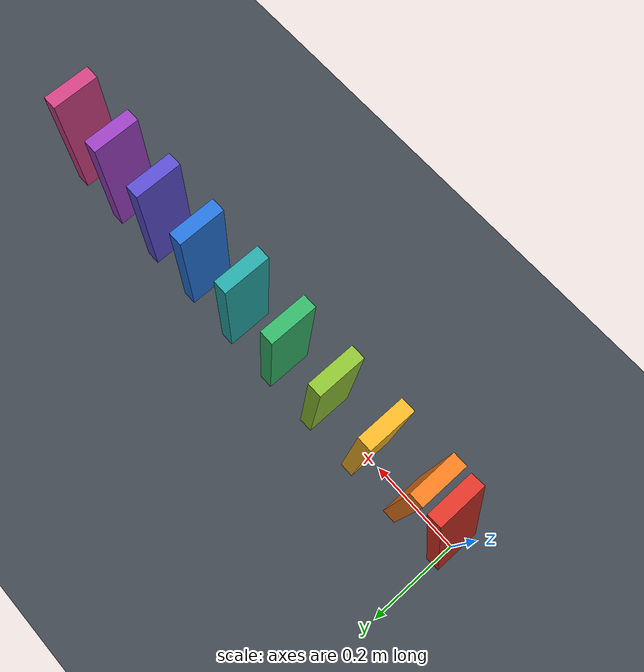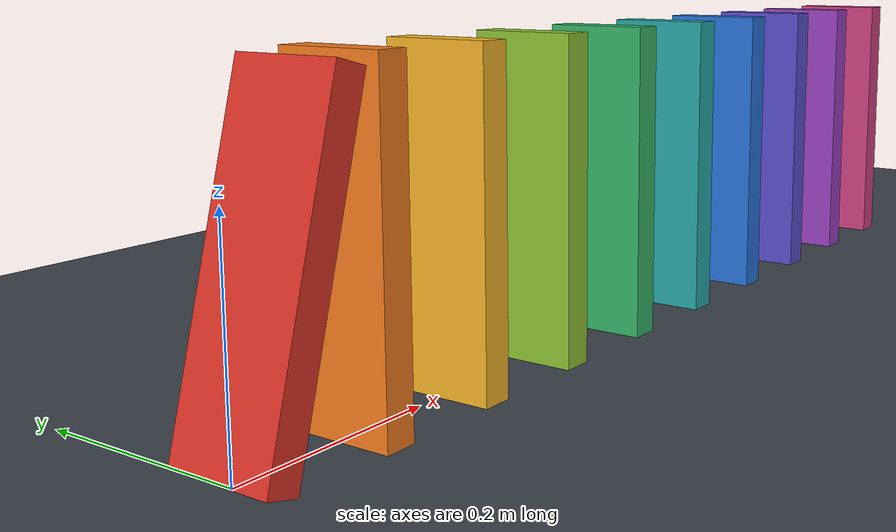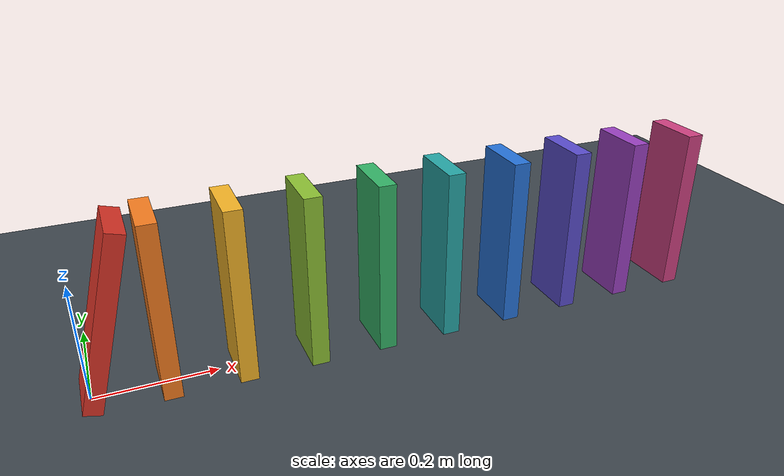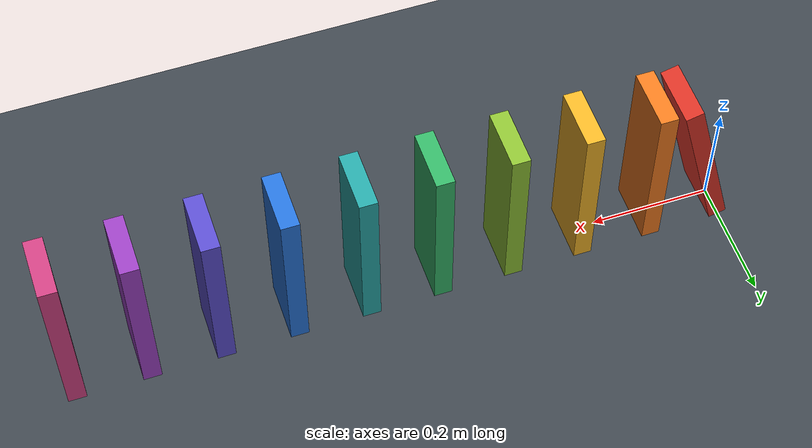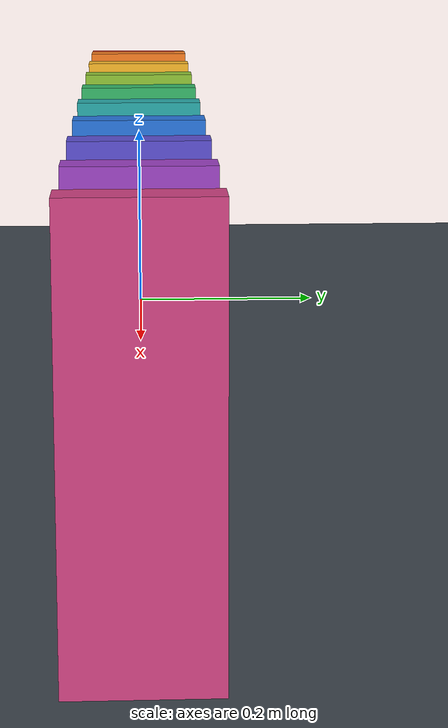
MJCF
<mujoco model="ten_domino_chain">
  <compiler angle="degree"/>
  <option timestep="0.002" gravity="0 0 -9.81" integrator="implicitfast" cone="elliptic" iterations="100"/>
  <statistic center="0.55 0 0.12" extent="1.5"/>

  <worldbody>
    <light name="overhead" pos="0.5 -0.5 2" dir="0 0 -1" diffuse="0.8 0.8 0.8"/>
    <geom name="floor" type="plane" pos="0 0 0" size="2 1 0.1" friction="1 0.01 0.001" condim="3" solref="0.008 1" solimp="0.95 0.99 0.001" rgba="0.24 0.27 0.30 1"/>

    <body name="domino1" pos="0.039333969 0 0.148771160" quat="0.991444861 0 0.130526192 0">
      <freejoint name="domino1_joint"/>
      <geom name="domino1_geom" type="box" size="0.015 0.05 0.15" density="650" friction="0.9 0.01 0.001" condim="3" solref="0.008 1" solimp="0.95 0.99 0.001" rgba="0.85 0.20 0.15 1"/>
    </body>

    <body name="domino2" pos="0.12 0 0.15">
      <freejoint name="domino2_joint"/>
      <geom name="domino2_geom" type="box" size="0.015 0.05 0.15" density="650" friction="0.9 0.01 0.001" condim="3" solref="0.008 1" solimp="0.95 0.99 0.001" rgba="0.95 0.48 0.12 1"/>
    </body>

    <body name="domino3" pos="0.24 0 0.15">
      <freejoint name="domino3_joint"/>
      <geom name="domino3_geom" type="box" size="0.015 0.05 0.15" density="650" friction="0.9 0.01 0.001" condim="3" solref="0.008 1" solimp="0.95 0.99 0.001" rgba="0.95 0.70 0.15 1"/>
    </body>

    <body name="domino4" pos="0.36 0 0.15">
      <freejoint name="domino4_joint"/>
      <geom name="domino4_geom" type="box" size="0.015 0.05 0.15" density="650" friction="0.9 0.01 0.001" condim="3" solref="0.008 1" solimp="0.95 0.99 0.001" rgba="0.55 0.75 0.20 1"/>
    </body>

    <body name="domino5" pos="0.48 0 0.15">
      <freejoint name="domino5_joint"/>
      <geom name="domino5_geom" type="box" size="0.015 0.05 0.15" density="650" friction="0.9 0.01 0.001" condim="3" solref="0.008 1" solimp="0.95 0.99 0.001" rgba="0.20 0.70 0.40 1"/>
    </body>

    <body name="domino6" pos="0.60 0 0.15">
      <freejoint name="domino6_joint"/>
      <geom name="domino6_geom" type="box" size="0.015 0.05 0.15" density="650" friction="0.9 0.01 0.001" condim="3" solref="0.008 1" solimp="0.95 0.99 0.001" rgba="0.15 0.65 0.65 1"/>
    </body>

    <body name="domino7" pos="0.72 0 0.15">
      <freejoint name="domino7_joint"/>
      <geom name="domino7_geom" type="box" size="0.015 0.05 0.15" density="650" friction="0.9 0.01 0.001" condim="3" solref="0.008 1" solimp="0.95 0.99 0.001" rgba="0.15 0.45 0.85 1"/>
    </body>

    <body name="domino8" pos="0.84 0 0.15">
      <freejoint name="domino8_joint"/>
      <geom name="domino8_geom" type="box" size="0.015 0.05 0.15" density="650" friction="0.9 0.01 0.001" condim="3" solref="0.008 1" solimp="0.95 0.99 0.001" rgba="0.35 0.30 0.80 1"/>
    </body>

    <body name="domino9" pos="0.96 0 0.15">
      <freejoint name="domino9_joint"/>
      <geom name="domino9_geom" type="box" size="0.015 0.05 0.15" density="650" friction="0.9 0.01 0.001" condim="3" solref="0.008 1" solimp="0.95 0.99 0.001" rgba="0.60 0.25 0.75 1"/>
    </body>

    <body name="domino10" pos="1.08 0 0.15">
      <freejoint name="domino10_joint"/>
      <geom name="domino10_geom" type="box" size="0.015 0.05 0.15" density="650" friction="0.9 0.01 0.001" condim="3" solref="0.008 1" solimp="0.95 0.99 0.001" rgba="0.80 0.25 0.50 1"/>
    </body>
  </worldbody>

  <keyframe>
    <key name="start"/>
  </keyframe>
</mujoco>
